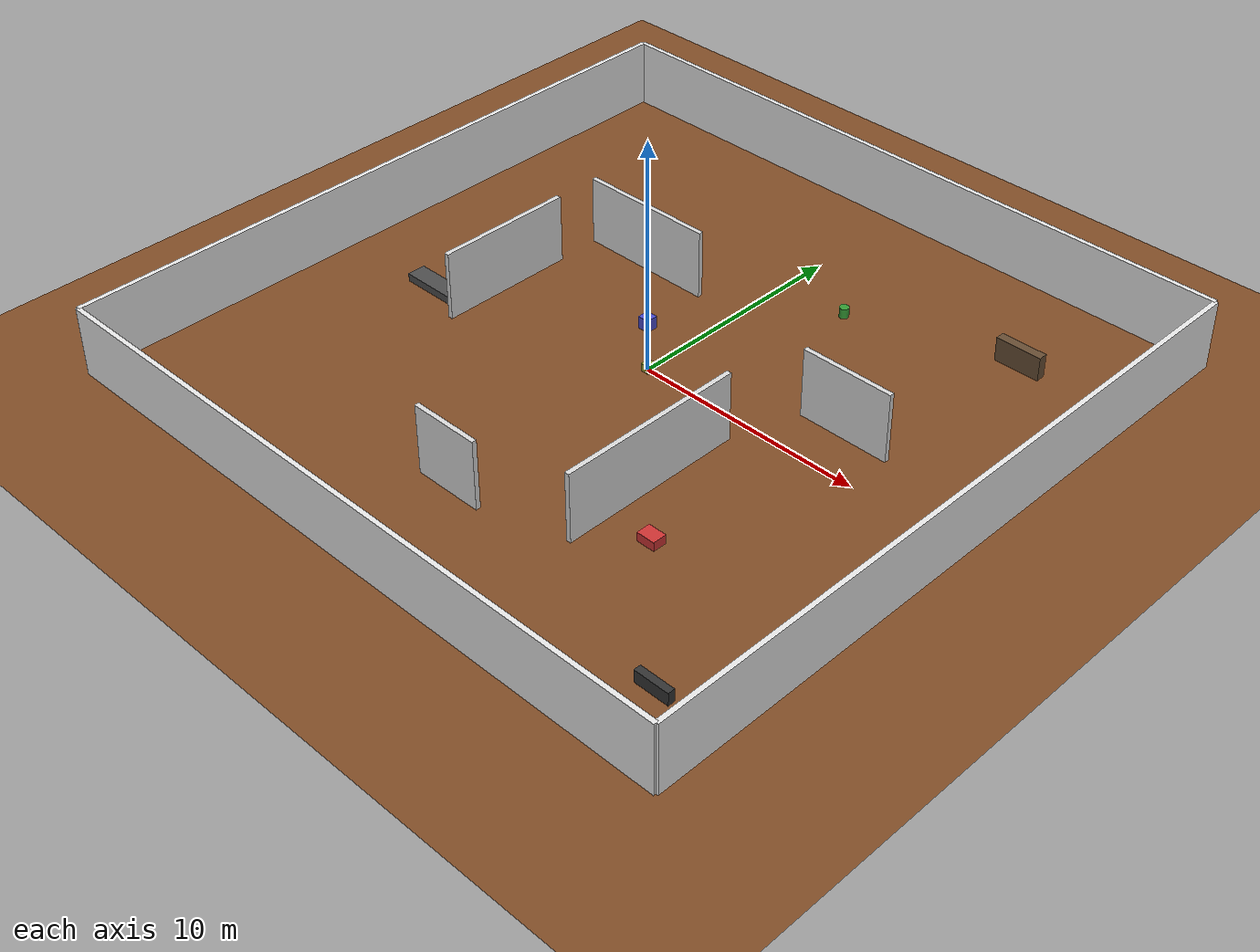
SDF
<?xml version="1.0" ?>
<sdf version="1.9">
  <world name="ackermann_world">
    <!-- 全局光照（室内灯光） -->

    <light type="point" name="ceiling_light1">
      <cast_shadows>true</cast_shadows>
      <pose>0 0 3 0 0 0</pose>
      <diffuse>0.9 0.9 0.8 1</diffuse>
      <specular>0.1 0.1 0.1 1</specular>
      <attenuation>
        <range>10</range>
        <linear>0.1</linear>
        <constant>0.9</constant>
        <quadratic>0.01</quadratic>
      </attenuation>
    </light>
    <light type="point" name="ceiling_light2">
      <cast_shadows>true</cast_shadows>
      <pose>6 -6 3 0 0 0</pose>
      <diffuse>0.9 0.9 0.8 1</diffuse>
      <specular>0.1 0.1 0.1 1</specular>
      <attenuation>
        <range>8</range>
        <linear>0.1</linear>
        <constant>0.9</constant>
        <quadratic>0.01</quadratic>
      </attenuation>
    </light>

    <!-- 物理引擎设置 -->
    <physics name="default_physics" type="dart">
      <max_step_size>0.001</max_step_size>
      <real_time_factor>1</real_time_factor>
      <real_time_update_rate>1000</real_time_update_rate>
    </physics>

    <!-- 插件 -->
    <plugin filename="libignition-gazebo6-physics-system.so" name="gz::sim::systems::Physics"/>
    <plugin filename="libignition-gazebo6-user-commands-system.so" name="gz::sim::systems::UserCommands"/>
    <plugin filename="libignition-gazebo6-scene-broadcaster-system.so" name="gz::sim::systems::SceneBroadcaster"/>

    <!-- 地面（木板颜色） -->
    <model name="ground_plane">
      <static>true</static>
      <link name="link">
        <collision name="collision">
          <geometry>
            <plane>
              <normal>0 0 1</normal>
              <size>30 30</size>
            </plane>
          </geometry>
          <surface>
            <friction>
              <ode>
                <mu>0.3</mu>
                <mu2>0.3</mu2>
              </ode>
            </friction>
          </surface>
        </collision>
        <visual name="visual">
          <geometry>
            <plane>
              <normal>0 0 1</normal>
              <size>30 30</size>
            </plane>
          </geometry>
          <material>
            <ambient>0.4 0.2 0.1 1</ambient>
            <diffuse>0.5 0.3 0.15 1</diffuse>
            <specular>0.1 0.1 0.1 1</specular>
          </material>
        </visual>
      </link>
    </model>

    <!-- 四面环抱的墙壁 -->
    <model name="outer_walls">
      <static>true</static>
      <link name="link">
        <!-- 北墙 -->
        <collision name="north_wall_collision">
          <pose>0 15 1.5 0 0 0</pose>
          <geometry>
            <box>
              <size>30 0.2 3</size>
            </box>
          </geometry>
        </collision>
        <visual name="north_wall_visual">
          <pose>0 15 1.5 0 0 0</pose>
          <geometry>
            <box>
              <size>30 0.2 3</size>
            </box>
          </geometry>
          <material>
            <diffuse>0.9 0.9 0.9 1</diffuse>
          </material>
        </visual>
        <!-- 南墙 -->
        <collision name="south_wall_collision">
          <pose>0 -15 1.5 0 0 0</pose>
          <geometry>
            <box>
              <size>30 0.2 3</size>
            </box>
          </geometry>
        </collision>
        <visual name="south_wall_visual">
          <pose>0 -15 1.5 0 0 0</pose>
          <geometry>
            <box>
              <size>30 0.2 3</size>
            </box>
          </geometry>
          <material>
            <diffuse>0.9 0.9 0.9 1</diffuse>
          </material>
        </visual>
        <!-- 东墙 -->
        <collision name="east_wall_collision">
          <pose>15 0 1.5 0 0 1.57</pose>
          <geometry>
            <box>
              <size>30 0.2 3</size>
            </box>
          </geometry>
        </collision>
        <visual name="east_wall_visual">
          <pose>15 0 1.5 0 0 1.57</pose>
          <geometry>
            <box>
              <size>30 0.2 3</size>
            </box>
          </geometry>
          <material>
            <diffuse>0.9 0.9 0.9 1</diffuse>
          </material>
        </visual>
        <!-- 西墙 -->
        <collision name="west_wall_collision">
          <pose>-15 0 1.5 0 0 1.57</pose>
          <geometry>
            <box>
              <size>30 0.2 3</size>
            </box>
          </geometry>
        </collision>
        <visual name="west_wall_visual">
          <pose>-15 0 1.5 0 0 1.57</pose>
          <geometry>
            <box>
              <size>30 0.2 3</size>
            </box>
          </geometry>
          <material>
            <diffuse>0.9 0.9 0.9 1</diffuse>
          </material>
        </visual>
      </link>
    </model>

    <!-- 内部墙壁（更复杂布局） -->
    <model name="inner_walls">
      <static>true</static>
      <link name="link">
        <!-- 客厅分隔墙1 -->
        <collision name="inner_wall1_collision">
          <pose>-5 5 1.5 0 0 0</pose>
          <geometry>
            <box>
              <size>6 0.2 3</size>
            </box>
          </geometry>
        </collision>
        <visual name="inner_wall1_visual">
          <pose>-5 5 1.5 0 0 0</pose>
          <geometry>
            <box>
              <size>6 0.2 3</size>
            </box>
          </geometry>
          <material>
            <diffuse>0.85 0.85 0.85 1</diffuse>
          </material>
        </visual>
        <!-- 走廊墙1 -->
        <collision name="inner_wall2_collision">
          <pose>5 -5 1.5 0 0 1.57</pose>
          <geometry>
            <box>
              <size>8 0.2 3</size>
            </box>
          </geometry>
        </collision>
        <visual name="inner_wall2_visual">
          <pose>5 -5 1.5 0 0 1.57</pose>
          <geometry>
            <box>
              <size>8 0.2 3</size>
            </box>
          </geometry>
          <material>
            <diffuse>0.85 0.85 0.85 1</diffuse>
          </material>
        </visual>
        <!-- 狭窄通道墙1 -->
        <collision name="inner_wall3_collision">
          <pose>0 -10 1.5 0 0 0</pose>
          <geometry>
            <box>
              <size>3 0.2 3</size>
            </box>
          </geometry>.xml
        </collision>
        <visual name="inner_wall3_visual">
          <pose>0 -10 1.5 0 0 0</pose>
          <geometry>
            <box>
              <size>3 0.2 3</size>
            </box>
          </geometry>
          <material>
            <diffuse>0.85 0.85 0.85 1</diffuse>
          </material>
        </visual>
        <!-- 迷宫墙1 -->
        <collision name="inner_wall4_collision">
          <pose>-8 0 1.5 0 0 1.57</pose>
          <geometry>
            <box>
              <size>6 0.2 3</size>
            </box>
          </geometry>
        </collision>
        <visual name="inner_wall4_visual">
          <pose>-8 0 1.5 0 0 1.57</pose>
          <geometry>
            <box>
              <size>6 0.2 3</size>
            </box>
          </geometry>
          <material>
            <diffuse>0.85 0.85 0.85 1</diffuse>
          </material>
        </visual>
        <!-- 迷宫墙2 -->
        <collision name="inner_wall5_collision">
          <pose>8 2 1.5 0 0 0</pose>
          <geometry>
            <box>
              <size>4 0.2 3</size>
            </box>
          </geometry>
        </collision>
        <visual name="inner_wall5_visual">
          <pose>8 2 1.5 0 0 0</pose>
          <geometry>
            <box>
              <size>4 0.2 3</size>
            </box>
          </geometry>
          <material>
            <diffuse>0.85 0.85 0.85 1</diffuse>
          </material>
        </visual>
      </link>
    </model>

    <!-- 家具：桌子 -->
    <model name="table">
      <static>true</static>
      <pose>-7 7 0 0 0 0</pose>
      <link name="link">
        <collision name="collision">
          <geometry>
            <box>
              <size>2.5 1.2 0.8</size>
            </box>
          </geometry>
        </collision>
        <visual name="visual">
          <geometry>
            <box>
              <size>2.5 1.2 0.8</size>
            </box>
          </geometry>
          <material>
            <diffuse>0.6 0.4 0.2 1</diffuse>
          </material>
        </visual>
      </link>
    </model>

    <!-- 家具：书架 -->
    <model name="bookshelf">
      <static>true</static>
      <pose>10 10 0 0 0 0</pose>
      <link name="link">
        <collision name="collision">
          <geometry>
            <box>
              <size>2 0.4 2</size>
            </box>
          </geometry>
        </collision>
        <visual name="visual">
          <geometry>
            <box>
              <size>2 0.4 2</size>
            </box>
          </geometry>
          <material>
            <diffuse>0.4 0.3 0.2 1</diffuse>
          </material>
        </visual>
      </link>
    </model>

    <!-- 家具：沙发 -->
    <model name="sofa">
      <static>true</static>
      <pose>-10 -2 0 0 0 0</pose>
      <link name="link">
        <collision name="collision">
          <geometry>
            <box>
              <size>2.5 0.8 0.6</size>
            </box>
          </geometry>
        </collision>
        <visual name="visual">
          <geometry>
            <box>
              <size>2.5 0.8 0.6</size>
            </box>
          </geometry>
          <material>
            <diffuse>0.3 0.3 0.3 1</diffuse>
          </material>
        </visual>
      </link>
    </model>

    <!-- 家具：电视机 -->
    <model name="tv">
      <static>true</static>
      <pose>12 -12 0 0 0 0</pose>
      <link name="link">
        <collision name="collision">
          <geometry>
            <box>
              <size>1.5 0.3 1</size>
            </box>
          </geometry>
        </collision>
        <visual name="visual">
          <geometry>
            <box>
              <size>1.5 0.3 1</size>
            </box>
          </geometry>
          <material>
            <diffuse>0.2 0.2 0.2 1</diffuse>
          </material>
        </visual>
      </link>
    </model>

    <!-- 装饰：植物1 -->
    <model name="plant1">
      <static>true</static>
      <pose>3 8 0 0 0 0</pose>
      <link name="link">
        <collision name="collision">
          <geometry>
            <cylinder>
              <radius>0.2</radius>
              <length>0.8</length>
            </cylinder>
          </geometry>
        </collision>
        <visual name="visual">
          <geometry>
            <cylinder>
              <radius>0.2</radius>
              <length>0.8</length>
            </cylinder>
          </geometry>
          <material>
            <diffuse>0.2 0.6 0.2 1</diffuse>
          </material>
        </visual>
      </link>
    </model>

    <!-- 装饰：植物2 -->
    <model name="plant2">
      <static>true</static>
      <pose>-3 -8 0 0 0 0</pose>
      <link name="link">
        <collision name="collision">
          <geometry>
            <cylinder>
              <radius>0.2</radius>
              <length>0.8</length>
            </cylinder>
          </geometry>
        </collision>
        <visual name="visual">
          <geometry>
            <cylinder>
              <radius>0.2</radius>
              <length>0.8</length>
            </cylinder>
          </geometry>
          <material>
            <diffuse>0.2 0.6 0.2 1</diffuse>
          </material>
        </visual>
      </link>
    </model>

    <!-- 障碍物：chair -->
    <model name="chair">
      <pose>-2 2 0.1 0 0 0</pose>
      <link name="link">
        <inertial>
          <mass>5</mass>
          <inertia>
            <ixx>0.1</ixx>
            <iyy>0.1</iyy>
            <izz>0.1</izz>
          </inertia>
        </inertial>
        <collision name="collision">
          <geometry>
            <box>
              <size>0.5 0.5 0.8</size>
            </box>
          </geometry>
          <surface>
            <friction>
              <ode>
                <mu>0.3</mu>
                <mu2>0.3</mu2>
              </ode>
            </friction>
          </surface>
        </collision>
        <visual name="visual">
          <geometry>
            <box>
              <size>0.5 0.5 0.8</size>
            </box>
          </geometry>
          <material>
            <diffuse>0.3 0.3 0.8 1</diffuse>
          </material>
        </visual>
      </link>
      <plugin filename="libignition-gazebo6-velocity-control-system.so" name="gz::sim::systems::VelocityControl">
        <topic>/chair_cmd</topic>
      </plugin>
    </model>

    <!-- 障碍物：cart -->
    <model name="cart">
      <pose>7 -7 0.1 0 0 0</pose>
      <link name="link">
        <inertial>
          <mass>10</mass>
          <inertia>
            <ixx>0.2</ixx>
            <iyy>0.2</iyy>
            <izz>0.2</izz>
          </inertia>
        </inertial>
        <collision name="collision">
          <geometry>
            <box>
              <size>0.8 0.6 0.5</size>
            </box>
          </geometry>
          <surface>
            <friction>
              <ode>
                <mu>0.3</mu>
                <mu2>0.3</mu2>
              </ode>
            </friction>
          </surface>
        </collision>
        <visual name="visual">
          <geometry>
            <box>
              <size>0.8 0.6 0.5</size>
            </box>
          </geometry>
          <material>
            <diffuse>0.8 0.2 0.2 1</diffuse>
          </material>
        </visual>
      </link>
      <plugin filename="libignition-gazebo6-velocity-control-system.so" name="gz::sim::systems::VelocityControl">
        <topic>/cart_cmd</topic>
      </plugin>
    </model>

    <!-- 障碍物：box -->
    <model name="box">
      <pose>0 0 0.1 0 0 0</pose>
      <link name="link">
        <inertial>
          <mass>3</mass>
          <inertia>
            <ixx>0.05</ixx>
            <iyy>0.05</iyy>
            <izz>0.05</izz>
          </inertia>
        </inertial>
        <collision name="collision">
          <geometry>
            <box>
              <size>0.4 0.4 0.4</size>
            </box>
          </geometry>
          <surface>
            <friction>
              <ode>
                <mu>0.3</mu>
                <mu2>0.3</mu2>
              </ode>
            </friction>
          </surface>
        </collision>
        <visual name="visual">
          <geometry>
            <box>
              <size>0.4 0.4 0.4</size>
            </box>
          </geometry>
          <material>
            <diffuse>0.6 0.6 0.2 1</diffuse>
          </material>
        </visual>
      </link>
      <plugin filename="libignition-gazebo6-velocity-control-system.so" name="gz::sim::systems::VelocityControl">
        <topic>/box_cmd</topic>
      </plugin>
    </model>

  </world>
</sdf>
